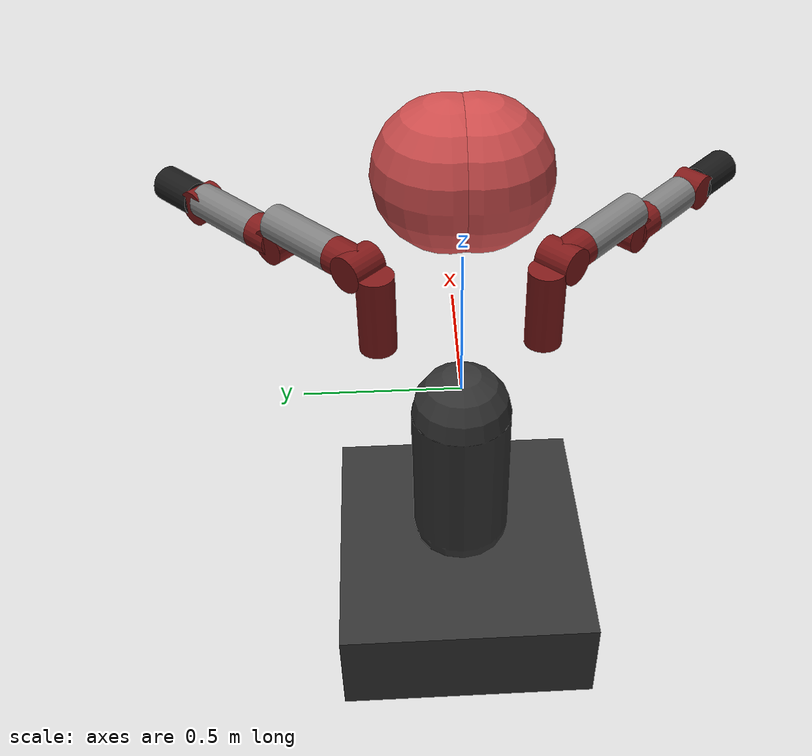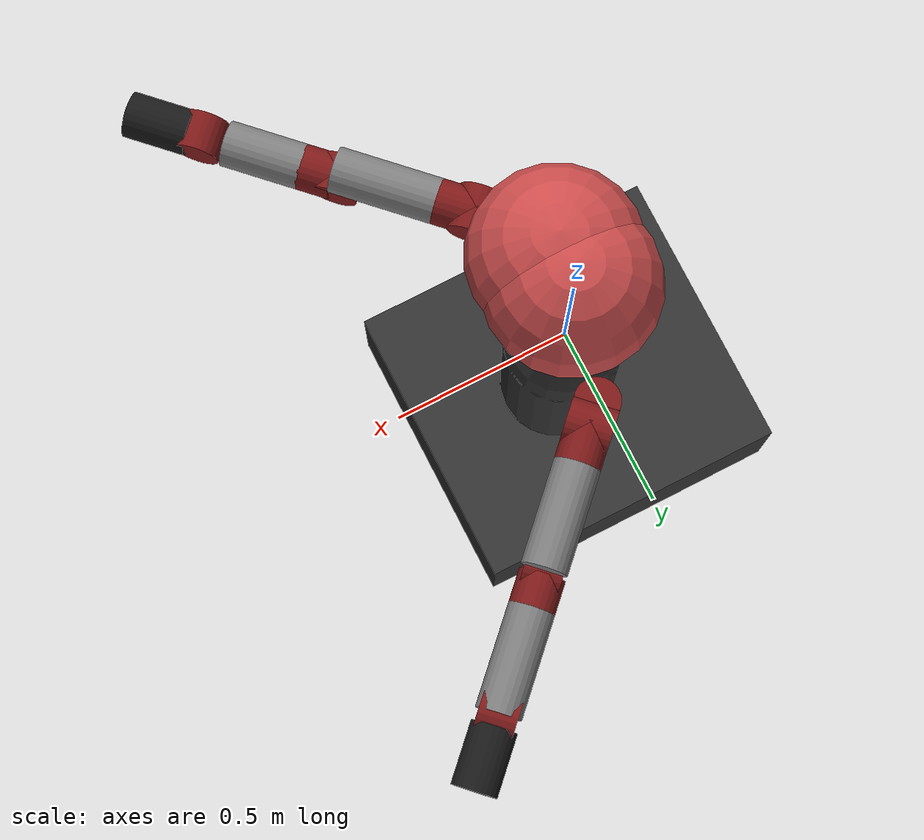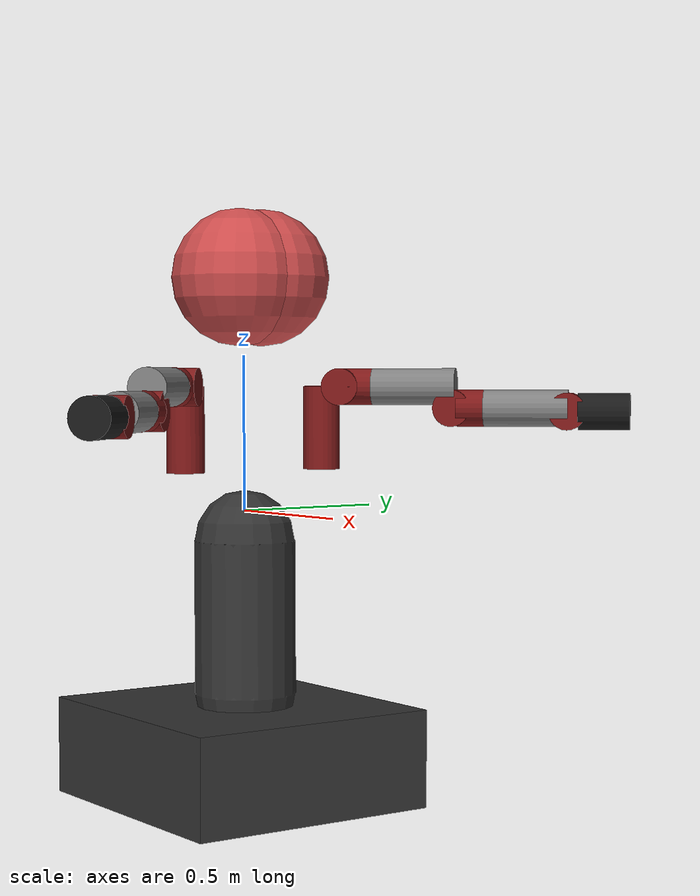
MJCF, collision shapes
<mujoco model="baxter">
  <compiler coordinate="local" angle="radian" strippath="false" />
  <size njmax="795" nconmax="250" nstack="631875" />
  <asset>
    <mesh name="base_link" file="meshes/torso/base_link.STL" />
    <mesh name="base_link_collision" file="meshes/torso/base_link_collision.STL" />
    <mesh name="PEDESTAL" file="meshes/base/PEDESTAL.STL" />
    <mesh name="pedestal_link_collision" file="meshes/base/pedestal_link_collision.STL" />
    <mesh name="H0" file="meshes/head/H0.STL" />
    <mesh name="H1" file="meshes/head/H1.STL" />
    <mesh name="S0" file="meshes/upper_shoulder/S0.STL" />
    <mesh name="S1" file="meshes/lower_shoulder/S1.STL" />
    <mesh name="E0" file="meshes/upper_elbow/E0.STL" />
    <mesh name="E1" file="meshes/lower_elbow/E1.STL" />
    <mesh name="W0" file="meshes/upper_forearm/W0.STL" />
    <mesh name="W1" file="meshes/lower_forearm/W1.STL" />
    <mesh name="W2" file="meshes/wrist/W2.STL" />
    <mesh name="paddle_tip" file="meshes/electric_gripper/fingers/paddle_tip.STL" />
  </asset>

  <visual>
    <map fogstart="1.5" fogend="3" />
    <quality shadowsize="2048" />
  </visual>
  <default>
    <default class="viz">
      <geom margin="0.001" contype="0" conaffinity="0" group="1" type="mesh" />
    </default>
  </default>
  <contact>
    <exclude body1="right_upper_shoulder" body2="torso" />
    <exclude body1="right_upper_shoulder" body2="right_upper_elbow" />
    <exclude body1="right_lower_shoulder" body2="torso" />
    <exclude body1="left_upper_shoulder" body2="torso" />
    <exclude body1="left_upper_shoulder" body2="left_upper_elbow" />
    <exclude body1="left_lower_shoulder" body2="torso" />
    <exclude body1="collision_head_link_1" body2="torso" />
    <exclude body1="collision_head_link_2" body2="torso" />
  </contact>
  <worldbody>
    <body name="base" pos="0 0 0">
      <inertial pos="0 0 0" mass="10" diaginertia="0.001 0.001 0.001" />
      <body name="collision_head_link_1" pos="0.11 0 0.75">
        <inertial pos="0 0 0" mass="0.0001" diaginertia="1e-008 1e-008 1e-008" />
        <geom name="noviz_head_link_1_geom_1" margin="0.001" type="sphere" class="viz" size="0.001" rgba="0.8 0.3 0.3 0.3" pos="0 0 0" />
        <geom name="noviz_head_link_1_geom_2" margin="0.001" type="sphere" size="0.22" rgba="0.8 0.3 0.3 0.3" pos="-0.07 -0.04 0"/>
      </body>
      <body name="collision_head_link_2" pos="0.11 0 0.75">
        <inertial pos="0 0 0" mass="0.0001" diaginertia="1e-008 1e-008 1e-008" />
        <geom name="noviz_head_link_2_geom_1" margin="0.001" type="sphere" size="0.001" rgba="0.8 0.3 0.3 0.3" pos="0 0 0" />
        <geom name="noviz_head_link_2_geom_2" margin="0.001" type="sphere" size="0.22" rgba="0.8 0.3 0.3 0.3" pos="-0.07 0.04 0" />
      </body>
      <body name="torso" pos="0 0 0">
        <inertial pos="0 0 0" quat="0.997433 0.00167178 0.0715546 -0.00209003" mass="35.3365" diaginertia="1.87139 1.66268 0.779991" />
        <geom name="torso_base_link_mesh" margin="0.001" class="viz" mesh="base_link" />
        <geom name="torso_collider" margin="0.001" type="mesh" mesh="base_link_collision" class="viz"/>
        <body name="pedestal" pos="0 0 0">
          <inertial pos="0 0 0" quat="0.659267 -0.259505 -0.260945 0.655692" mass="60.864" diaginertia="6.0869 5.81635 4.20915" />
          <geom name="pedestal_mesh" margin="0.001" class="viz" rgba="0.2 0.2 0.2 1" mesh="PEDESTAL" />
          <geom name="_pedestal_collider_1" margin="0.001" pos="-.04 0 -.8" rgba="0.2 0.2 0.2 1" type="box" size=".46 .425 .16" />
          <geom name="pedestal_collider_2" margin="0.001" pos="0 0 -.35" rgba="0.2 0.2 0.2 1" type="capsule" size=".165 .25" />
        </body>
        <body name="head" pos="0.06 0 0.686">
          <inertial pos="0 0 0" quat="0.339345 0.850736 -0.347392 0.201027" mass="0.547767" diaginertia="0.00474065 0.00461087 0.00199949" />
          <joint limited="true" damping="0" armature=".01" name="head_pan" type="hinge" pos="0 0 0" axis="0 0 1" range="-1.5708 1.5708" />
          <geom name="head_mesh_h0" margin="0.001" class="viz" rgba="0.2 0.2 0.2 1" mesh="H0" />
          <body name="screen" pos="0.1227 0 0" quat="0.453099 0.542864 0.542864 0.453099">
            <inertial pos="0 0 0" quat="0.995785 0.0113501 -0.000390852 0.0910132" mass="0.440171" diaginertia="0.0040484 0.00275826 0.00150834" />
            <geom name="screen_mesh_1" margin="0.001" class="viz" rgba="0.5 0.1 0.1 1" mesh="H1" pos="0 0 -.03" euler="0 -1.57 0" />
            <geom margin="0.001" class="viz" name="display" type="box" size="0.109 0.08 0.002" rgba=".9 .9 .9 1" pos="0 -0.016 0" quat="0.991445 0.130526 0 0" />
          </body>
        </body>
        <body name="right_arm_mount" pos="0.024645 -0.219645 0.118588" quat="0.923879 0 0 -0.382684">
          <inertial pos="0 0 0" mass="0.0001" diaginertia="1e-008 1e-008 1e-008" />
          <body name="right_upper_shoulder" pos="0.055695 0 0.011038">
            <inertial pos="0.01783 0.00086 0.19127" quat="0.975667 0.0673303 -0.206117 0.0325173" mass="5.70044" diaginertia="0.0498344 0.0377511 0.0331351" />
            <joint limited="true" damping="0" armature=".01" name="right_s0" type="hinge" pos="0 0 0" axis="0 0 1" range="-1.70168 1.70168" />
            <geom name="right_upper_shoulder_mesh" margin="0.001" class="viz" rgba="0.5 0.1 0.1 1" mesh="S0" />
            <geom name="right_upper_shoulder_collider" margin="0.001" type="cylinder" size="0.06 0.1361" rgba="0.5 0.1 0.1 1" pos="0 0 0.1361"/>
            <body name="right_lower_shoulder" pos="0.069 0 0.27035" quat="0.707107 -0.707107 0 0">
              <inertial pos="0.06845 0.00269 -0.00529" quat="0.447487 0.536948 0.56425 0.439391" mass="3.22698" diaginertia="0.0278991 0.0212327 0.0112937" />
              <joint limited="true" damping="0" armature=".01" name="right_s1" type="hinge" pos="0 0 0" axis="0 0 1" range="-2.147 1.047" />
              <geom name="right_lower_shoulder_mesh" margin="0.001" class="viz" rgba="0.5 0.1 0.1 1" mesh="S1" />
              <geom name="right_lower_shoulder" margin="0.001" type="cylinder" size="0.06 0.06" rgba="0.5 0.1 0.1 1" pos="0 0 0" />
              <body name="right_upper_elbow" pos="0.102 0 0" quat="0.5 0.5 0.5 0.5">
                <inertial pos="-0.00276 0.00132 0.18086" quat="0.838995 -0.0423128 -0.121287 0.52876" mass="4.31272" diaginertia="0.0287695 0.0273625 0.011409" />
                <joint limited="true" damping="0" armature=".01" name="right_e0" type="hinge" pos="0 0 0" axis="0 0 1" range="-3.05418 3.05418" />
                <geom name="right_upper_elbow_mesh" margin="0.001" class="viz" rgba="0.5 0.1 0.1 1" mesh="E0" />
                <geom name="right_upper_elbow_collider_1" margin="0.001" type="cylinder" size="0.06 0.0535" rgba="0.5 0.1 0.1 1" pos="0 0 -0.0535"/>
                <geom margin="0.001" name="right_upper_elbow_visual" type="cylinder" size="0.06 0.1365" pos="0 0 0.1365" class="viz"/>
                <body name="right_lower_elbow" pos="0.069 0 0.26242" quat="0.5 -0.5 -0.5 -0.5">
                  <inertial pos="0.02611 0.00159 -0.01117" quat="0.440433 0.577149 0.562777 0.395221" mass="2.07206" diaginertia="0.0132096 0.00950002 0.00685697" />
                  <joint limited="true" damping="0" armature=".01" name="right_e1" type="hinge" pos="0 0 0" axis="0 0 1" range="-0.05 2.618" />
                  <geom name="right_lower_elbox_mesh" margin="0.001" class="viz" rgba="0.5 0.1 0.1 1" mesh="E1" />
                  <geom name="right_lower_elbow_collider" margin="0.001" type="cylinder" size="0.06 0.05" rgba="0.5 0.1 0.1 1" pos="0 0 0" />
                  <body name="right_upper_forearm" pos="0.10359 0 0" quat="0.5 0.5 0.5 0.5">
                    <inertial pos="-0.00168 0.0046 0.13952" quat="0.892709 -0.0256256 0.00446984 0.449882" mass="2.24665" diaginertia="0.016916 0.0165511 0.00371123" />
                    <joint limited="true" damping="0" armature=".01" name="right_w0" type="hinge" pos="0 0 0" axis="0 0 1" range="-3.059 3.059" />
                    <geom name="right_upper_forearm_mesh" margin="0.001" class="viz" rgba="0.5 0.1 0.1 1" mesh="W0" />
                    <geom name="right_upper_forearm_collider" margin="0.001" type="cylinder" size="0.06 0.044" rgba="0.5 0.1 0.1 1" pos="0 0 -0.044" />
                    <geom margin="0.001" name="right_upper_forearm_visual" type="cylinder" size="0.06 0.1036" pos="0 0 0.1" class="viz"/>
                    <body name="right_lower_forearm" pos="0.01 0 0.2707" quat="0.5 -0.5 -0.5 -0.5">
                      <inertial pos="0.06041 0.00697 0.006" quat="0.456911 0.468526 0.475683 0.587743" mass="1.60979" diaginertia="0.00708828 0.00552689 0.00379383" />
                      <joint limited="true" damping="0" armature=".01" name="right_w1" type="hinge" pos="0 0 0" axis="0 0 1" range="-1.5708 2.094" />
                      <geom name="right_lower_forearm_mesh" margin="0.001" class="viz" rgba="0.5 0.1 0.1 1" mesh="W1" />
                      <geom name="right_lower_forearm_visual" margin="0.001" type="cylinder" size="0.06 0.05" rgba="0.5 0.1 0.1 1" pos="0 0 0" />
                      <body name="right_wrist" pos="0.115975 0 0" quat="0.5 0.5 0.5 0.5">
                        <inertial pos="0.00198 0.00125 0.01855" quat="0.0594843 0.68926 -0.16016 0.704082" mass="0.35093" diaginertia="0.0003082 0.000269928 0.000251035" />
                        <joint limited="true" damping="0" armature=".01" name="right_w2" type="hinge" pos="0 0 0" axis="0 0 1" range="-3.059 3.059" />
                        <geom name="right_wrist_mesh" margin="0.001" class="viz" rgba="0.1 0.1 0.1 1" mesh="W2" />
                        <geom name="right_wrist_cylinder" margin="0.001" type="cylinder" size="0.06 0.0825" rgba="0.1 0.1 0.1 1" pos="0 0 0" />
                        <body name="right_hand" pos="0 0 0.11355">
				<!-- right gripper gets added here -->
                        </body>
                      </body>
                    </body>
                  </body>
                </body>
              </body>
            </body>
          </body>
        </body>
        <body name="left_arm_mount" pos="0.024645 0.219645 0.118588" quat="0.923879 0 0 0.382684">
          <inertial pos="0 0 0" mass="0.0001" diaginertia="1e-008 1e-008 1e-008" />
          <body name="left_upper_shoulder" pos="0.055695 0 0.011038">
            <inertial pos="0.01783 0.00086 0.19127" quat="0.975667 0.0673303 -0.206117 0.0325173" mass="5.70044" diaginertia="0.0498344 0.0377511 0.0331351" />
            <joint limited="true" damping="0" armature=".01" name="left_s0" type="hinge" pos="0 0 0" axis="0 0 1" range="-1.70168 1.70168" />
            <geom name="left_upper_shoulder_mesh" margin="0.001" class="viz" rgba="0.5 0.1 0.1 1" mesh="S0" />
            <geom name="left_upper_shoulder_cylinder" margin="0.001" type="cylinder" size="0.06 0.1361" rgba="0.5 0.1 0.1 1" pos="0 0 0.1361" />
            <body name="left_lower_shoulder" pos="0.069 0 0.27035" quat="0.707107 -0.707107 0 0">
              <inertial pos="0.06845 0.00269 -0.00529" quat="0.447487 0.536948 0.56425 0.439391" mass="3.22698" diaginertia="0.0278991 0.0212327 0.0112937" />
              <joint limited="true" damping="0" armature=".01" name="left_s1" type="hinge" pos="0 0 0" axis="0 0 1" range="-2.147 1.047" />
              <geom name="left_lower_shoulder_mesh" margin="0.001" class="viz" rgba="0.5 0.1 0.1 1" mesh="S1" />
              <geom name="left_lower_shoulder_cylinder" margin="0.001" type="cylinder" size="0.06 0.06" rgba="0.5 0.1 0.1 1" pos="0 0 0" />
              <body name="left_upper_elbow" pos="0.102 0 0" quat="0.5 0.5 0.5 0.5">
                <inertial pos="-0.00276 0.00132 0.18086" quat="0.838995 -0.0423128 -0.121287 0.52876" mass="4.31272" diaginertia="0.0287695 0.0273625 0.011409" />
                <joint limited="true" damping="0" armature=".01" name="left_e0" type="hinge" pos="0 0 0" axis="0 0 1" range="-3.05418 3.05418" />
                <geom name="left_upper_elbow_mesh" margin="0.001" class="viz" rgba="0.5 0.1 0.1 1" mesh="E0" />
                <geom name="left_upper_elbow_cylinder" margin="0.001" type="cylinder" size="0.06 0.0535" rgba="0.5 0.1 0.1 1" pos="0 0 -0.0535" />
                <geom margin="0.001" name="left_upper_elbow_visual" type="cylinder" size="0.06 0.1365" pos="0 0 0.1365" class="viz"/>
                <body name="left_lower_elbow" pos="0.069 0 0.26242" quat="0.5 -0.5 -0.5 -0.5">
                  <inertial pos="0.02611 0.00159 -0.01117" quat="0.440433 0.577149 0.562777 0.395221" mass="2.07206" diaginertia="0.0132096 0.00950002 0.00685697" />
                  <joint limited="true" damping="0" armature=".01" name="left_e1" type="hinge" pos="0 0 0" axis="0 0 1" range="-0.05 2.618" />
                  <geom name="left_lower_elbow_mesh" margin="0.001" class="viz" rgba="0.5 0.1 0.1 1" mesh="E1" />
                  <geom name="left_lower_elbow_cylinder" margin="0.001" type="cylinder" size="0.06 0.05" rgba="0.5 0.1 0.1 1" pos="0 0 0" />
                  <body name="left_upper_forearm" pos="0.10359 0 0" quat="0.5 0.5 0.5 0.5">
                    <inertial pos="-0.00168 0.0046 0.13952" quat="0.892709 -0.0256256 0.00446984 0.449882" mass="2.24665" diaginertia="0.016916 0.0165511 0.00371123" />
                    <joint limited="true" damping="0" armature=".01" name="left_w0" type="hinge" pos="0 0 0" axis="0 0 1" range="-3.059 3.059" />
                    <geom name="left_upper_forearm_mesh" margin="0.001" class="viz" rgba="0.5 0.1 0.1 1" mesh="W0" />
                    <geom name="left_upper_forearm_cylinder" margin="0.001" type="cylinder" size="0.06 0.044" rgba="0.5 0.1 0.1 1" pos="0 0 -0.044" />
                    <geom margin="0.001" name="left_upper_forearm_visual" type="cylinder" size="0.06 0.136" pos="0 0 0.136" class="viz"/>
                    <body name="left_lower_forearm" pos="0.01 0 0.2707" quat="0.5 -0.5 -0.5 -0.5">
                      <inertial pos="0.06041 0.00697 0.006" quat="0.456911 0.468526 0.475683 0.587743" mass="1.60979" diaginertia="0.00708828 0.00552689 0.00379383" />
                      <joint limited="true" damping="0" armature=".01" name="left_w1" type="hinge" pos="0 0 0" axis="0 0 1" range="-1.5708 2.094" />
                      <geom name="left_lower_forearm_mesh" margin="0.001" class="viz" rgba="0.5 0.1 0.1 1" mesh="W1" />
                      <geom name="left_lower_forearm_cylinder" margin="0.001" type="cylinder" size="0.06 0.05" rgba="0.5 0.1 0.1 1" pos="0 0 0" />
                      <body name="left_wrist" pos="0.115975 0 0" quat="0.5 0.5 0.5 0.5">
                        <inertial pos="0.00198 0.00125 0.01855" quat="0.0594843 0.68926 -0.16016 0.704082" mass="0.35093" diaginertia="0.0003082 0.000269928 0.000251035" />
                        <joint limited="true" damping="0" armature=".01" name="left_w2" type="hinge" pos="0 0 0" axis="0 0 1" range="-3.059 3.059" />
                        <geom name="left_wrist_mesh" margin="0.001" class="viz" rgba="0.1 0.1 0.1 1" mesh="W2" />
                        <geom name="left_wrist_cylinder" margin="0.001" type="cylinder" size="0.06 0.0825" rgba="0.1 0.1 0.1 1" pos="0 0 0" />
                        <body name="left_hand" pos="0 0 0.11355">
       				<!-- left gripper gets added here -->
                        </body>
                      </body>
                    </body>
                  </body>
                </body>
              </body>
            </body>
          </body>
        </body>
      </body>
    </body>
    <!-- margin="0.001" type="sphere" class="viz" conaffinity="0" contype="0" size="0.01" rgba="1 0 1 0.3"  -->
  </worldbody>
  <actuator>

    <velocity joint="right_s0" ctrlrange="-2 2" ctrllimited="true" kv="60"/>
    <velocity joint="right_s1" ctrlrange="-2 2" ctrllimited="true" kv="50"/>
    <velocity joint="right_e0" ctrlrange="-2 2" ctrllimited="true" kv="20"/>
    <velocity joint="right_e1" ctrlrange="-2 2" ctrllimited="true" kv="20"/>
    <velocity joint="right_w0" ctrlrange="-4 4" ctrllimited="true" kv="5" />
    <velocity joint="right_w1" ctrlrange="-4 4" ctrllimited="true" kv="5" />
    <velocity joint="right_w2" ctrlrange="-4 4" ctrllimited="true" kv="5" />

    <velocity joint="left_s0" ctrlrange="-2 2" ctrllimited="true" kv="60"/>
    <velocity joint="left_s1" ctrlrange="-2 2" ctrllimited="true" kv="50"/>
    <velocity joint="left_e0" ctrlrange="-2 2" ctrllimited="true" kv="20"/>
    <velocity joint="left_e1" ctrlrange="-2 2" ctrllimited="true" kv="20"/>
    <velocity joint="left_w0" ctrlrange="-4 4" ctrllimited="true" kv="5" />
    <velocity joint="left_w1" ctrlrange="-4 4" ctrllimited="true" kv="5" />
    <velocity joint="left_w2" ctrlrange="-4 4" ctrllimited="true" kv="5" />

</actuator>
</mujoco>
